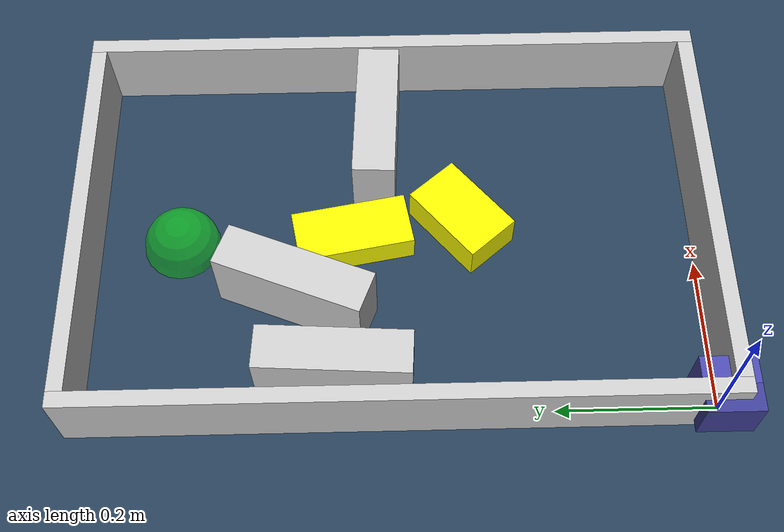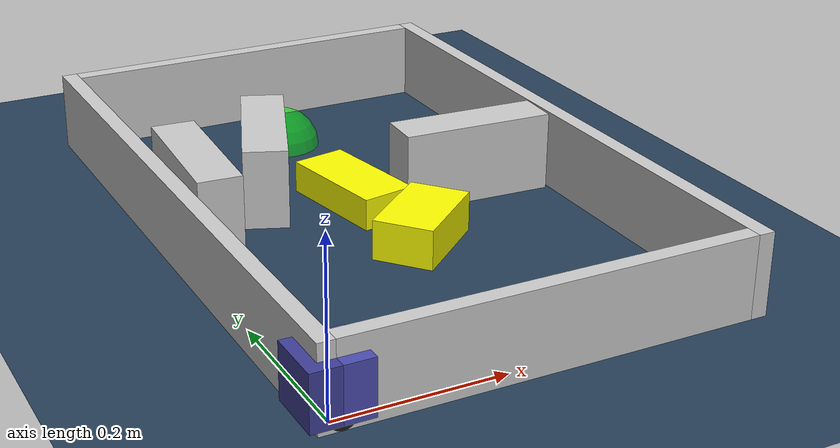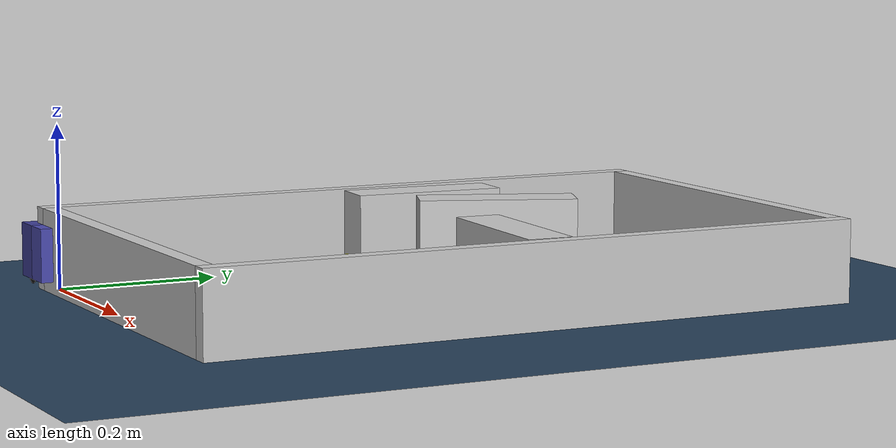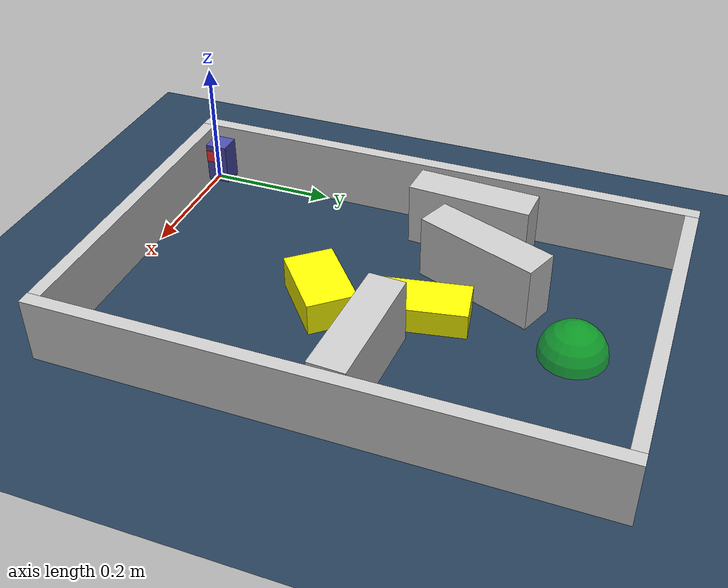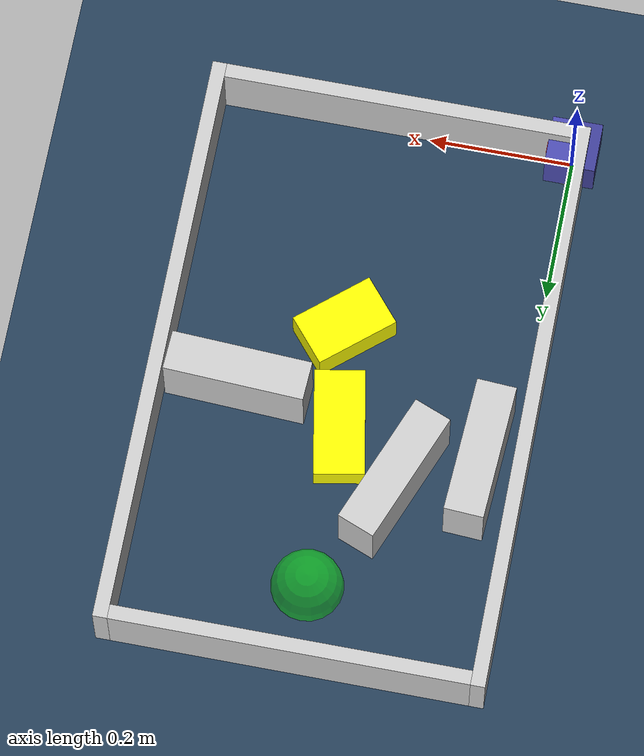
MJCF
<?xml version="1.0" ?>
<mujoco model="generated_environment">
  <option cone="elliptic" integrator="implicitfast" iterations="100" timestep="0.002"/>
  <default>
    <geom density="1"/>
  </default>
  <asset>
    <texture builtin="gradient" height="3072" rgb1="0.3 0.5 0.7" rgb2="0 0 0" type="skybox" width="512"/>
    <texture builtin="checker" height="300" mark="edge" markrgb="0.8 0.8 0.8" name="groundplane" rgb1="0.2 0.3 0.4" rgb2="0.1 0.2 0.3" type="2d" width="300"/>
    <material name="groundplane" reflectance="0.2" texrepeat="5 5" texture="groundplane" texuniform="true"/>
    <material name="robot" rgba="1.0 1.0 0.0 1.0"/>
  </asset>
  <include file="/home/dhruv/projects_dhruv/namo/namo_cpp/test_xml/little-car-modeling-package/assets/mjcf/little_car.xml"/>
  <worldbody>
    <light dir="0 0 -1" directional="true" pos="0 0 1.5"/>
    <geom condim="4" friction="0.5 0.005 0.001" material="groundplane" name="floor" size="0 0 0.05" type="plane"/>
    <body name="walls">
      <geom name="wall_1" condim="4" pos="-0.01 0.3875 0.05" friction="1 0.005 0.0001" rgba="0.800000011920929 0.800000011920929 0.800000011920929 1.0" size="0.01 0.40750000000000003 0.05" type="box"/>
      <geom name="wall_2" condim="4" pos="0.5 0.3875 0.05" friction="1 0.005 0.0001" rgba="0.800000011920929 0.800000011920929 0.800000011920929 1.0" size="0.01 0.40750000000000003 0.05" type="box"/>
      <geom name="wall_3" condim="4" pos="0.245 -0.01 0.05" friction="1 0.005 0.0001" rgba="0.800000011920929 0.800000011920929 0.800000011920929 1.0" size="0.245 0.01 0.05" type="box"/>
      <geom name="wall_4" condim="4" pos="0.245 0.785 0.05" friction="1 0.005 0.0001" rgba="0.800000011920929 0.800000011920929 0.800000011920929 1.0" size="0.245 0.01 0.05" type="box"/>
    </body>
    <body name="obstacle_1_movable">
      <geom name="obstacle_1_movable" condim="4" pos="0.24311200704494076 0.44498419911956566 0.02" quat="0.9960183588666497 0 0 0.089148352764288" friction="1 0.005 0.0001" rgba="1 1 0 1" size="0.035 0.075 0.02" type="box" mass="0.1"/>
      <joint type="free"/>
    </body>
    <body name="obstacle_2_movable">
      <geom name="obstacle_2_movable" condim="4" pos="0.26334950188111733 0.30232016214693586 0.025" quat="0.42102096821531626 0 0 0.9070509050340216" friction="1 0.005 0.0001" rgba="1 1 0 1" size="0.0375 0.06 0.025" type="box" mass="0.1"/>
      <joint type="free"/>
    </body>
    <body name="wall_5">
      <geom name="wall_5" condim="4" pos="0.38945025631264996 0.41165898802984224 0.05" quat="0.7240536547726591 0 0 0.6897436516636851" friction="1 0.005 0.0001" rgba="0.800000011920929 0.800000011920929 0.800000011920929 1.0" size="0.0275 0.0975 0.05" type="box"/>
    </body>
    <body name="wall_6">
      <geom name="wall_6" condim="4" pos="0.1543717926378745 0.5153414453956722 0.05" quat="-0.9821725251859248 0 0 0.18798172988326253" friction="1 0.005 0.0001" rgba="0.800000011920929 0.800000011920929 0.800000011920929 1.0" size="0.0275 0.0975 0.05" type="box"/>
    </body>
    <body name="wall_7">
      <geom name="wall_7" condim="4" pos="0.046223678013138106 0.46629833727084147 0.05" quat="0.72780172104025 0 0 0.6857876164315378" friction="1 0.005 0.0001" rgba="0.800000011920929 0.800000011920929 0.800000011920929 1.0" size="0.095 0.0275 0.05" type="box"/>
    </body>
    <site name="goal" type="sphere" size="0.05 0.05 0.05" rgba="0 1 0 0.5" pos="0.244197 0.6700109999999999 0.0"/>
  </worldbody>
</mujoco>

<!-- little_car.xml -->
<mujoco model="little_car">
  <compiler angle="radian" autolimits="true"/>
  <default>
    <geom condim="4"/>
    <joint damping="0.01" armature="0.0001"/>
  </default>
  <worldbody>
    <body name="car" pos="0 0 0.010000">
      <freejoint name="car_freejoint"/>
      <inertial pos="0.000000 0 0.037500" mass="0.350000"
                diaginertia="0.000266 0.000266 0.000286"/>
      <geom name="front_chassis_collision" type="box" pos="0.017500 0 0.037500"
            size="0.017500 0.035000 0.032500"
            rgba="0.3 0.3 0.7 1"/>
      <geom name="rear_chassis_collision" type="box" pos="-0.017500 0 0.037500"
            size="0.017500 0.035000 0.032500"
            rgba="0.25 0.25 0.6 1"/>
      <geom name="front_marker" type="box" pos="0.034000 0 0.050500"
            size="0.002000 0.015000 0.010000"
            rgba="1.0 0.2 0.2 1" contype="0" conaffinity="0"/>

      <body name="rear_support_body" pos="-0.030000 0.000000 0.002500">
        <joint name="rear_caster_joint" type="ball" damping="0.0001"/>
        <inertial pos="0 0 0" mass="0.025000"
                  diaginertia="0.000001 0.000001 0.000001"/>
        <geom name="rear_support" type="sphere"
              pos="0 0 0"
              size="0.002500"
              friction="0.000000 0.000000 0.000000"
              rgba="0.7 0.1 0.1 1"/>
      </body>

      <body name="front_support_body" pos="0.030000 0.000000 0.002500">
        <joint name="front_caster_joint" type="ball" damping="0.0001"/>
        <inertial pos="0 0 0" mass="0.025000"
                  diaginertia="0.000001 0.000001 0.000001"/>
        <geom name="front_support" type="sphere"
              pos="0 0 0"
              size="0.002500"
              friction="0.000000 0.000000 0.000000"
              rgba="0.1 0.7 0.1 1"/>
      </body>

      <body name="left_wheel" pos="0.000000 0.034000 0.015000">
        <inertial pos="0 0 0" mass="0.050000"
                  diaginertia="0.000003 0.000006 0.000003"/>
        <joint name="left_wheel_joint" type="hinge" axis="0 1 0"/>
        <geom name="left_wheel_collision" type="cylinder" size="0.015000 0.000500"
              euler="1.57079632679 0 0" rgba="0.1 0.1 0.1 1"/>
      </body>

      <body name="right_wheel" pos="0.000000 -0.034000 0.015000">
        <inertial pos="0 0 0" mass="0.050000"
                  diaginertia="0.000003 0.000006 0.000003"/>
        <joint name="right_wheel_joint" type="hinge" axis="0 1 0"/>
        <geom name="right_wheel_collision" type="cylinder" size="0.015000 0.000500"
              euler="1.57079632679 0 0" rgba="0.1 0.1 0.1 1"/>
      </body>
    </body>
  </worldbody>
  <contact>
    <exclude body1="car" body2="left_wheel"/>
    <exclude body1="car" body2="right_wheel"/>
  </contact>
  <actuator>
    <velocity name="left_wheel_drive" joint="left_wheel_joint"
              ctrlrange="-25.000000 25.000000"
              kv="0.750000" forcerange="-0.500000 0.500000"/>
    <velocity name="right_wheel_drive" joint="right_wheel_joint"
              ctrlrange="-25.000000 25.000000"
              kv="0.750000" forcerange="-0.500000 0.500000"/>
  </actuator>
</mujoco>
